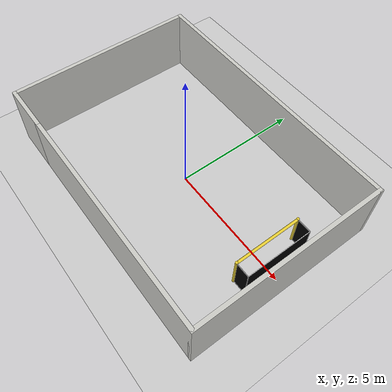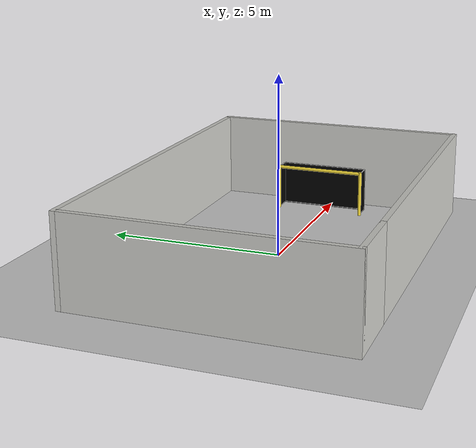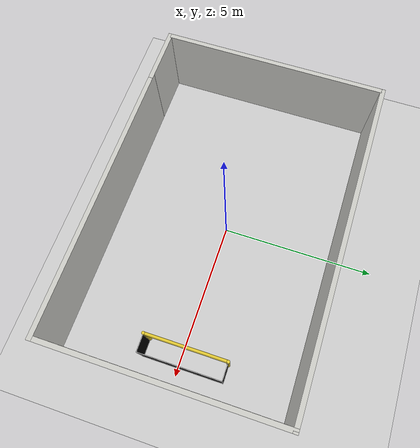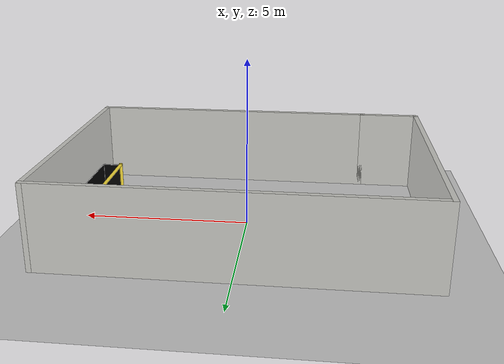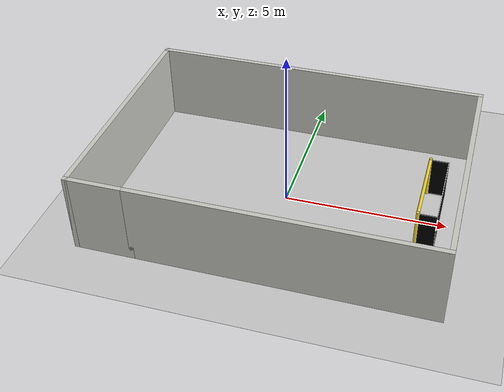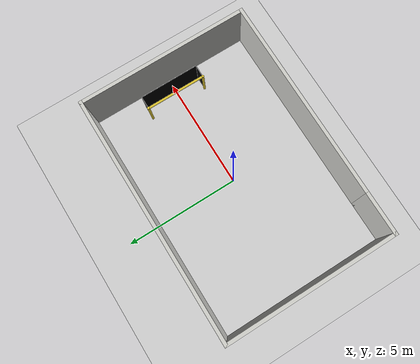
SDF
<sdf version="1.6">
 <world name="default">
  <model name="ground_plane">
   <static>1</static>
   <link name="link">
    <collision name="collision">
     <geometry><plane><normal>0 0 1</normal><size>100 100</size></plane></geometry>
     <surface><friction><ode><mu>100</mu><mu2>50</mu2></ode></friction></surface>
    </collision>
    <visual name="visual">
     <cast_shadows>0</cast_shadows>
     <geometry><plane><normal>0 0 1</normal><size>100 100</size></plane></geometry>
     <material>
      <script><uri>file://media/materials/scripts/gazebo.material</uri><name>Gazebo/Grey</name></script>
     </material>
    </visual>
   </link>
  </model>
  <model name="robocup_3d_goal">
   <link name="left_post">
    <pose>0 1.3 0.45 0 -0 0</pose>
    <inertial>
     <mass>1</mass>
     <inertia><ixx>1</ixx><ixy>0</ixy><ixz>0</ixz><iyy>1</iyy><iyz>0</iyz><izz>1</izz></inertia>
    </inertial>
    <visual name="visual">
     <geometry><cylinder><radius>0.05</radius><length>1.8</length></cylinder></geometry>
     <material>
      <script><uri>file://media/materials/scripts/gazebo.material</uri><name>Gazebo/ZincYellow</name></script>
      <ambient>1 1 1 1</ambient>
      <diffuse>1 1 1 1</diffuse>
      <specular>1 1 1 1</specular>
      <emissive>0 0 0 1</emissive>
      <shader type="vertex"><normal_map>__default__</normal_map></shader>
     </material>
    </visual>
    <collision name="collision">
     <geometry><cylinder><radius>0.05</radius><length>1.8</length></cylinder></geometry>
     <surface>
      <friction>
       <ode><mu>1</mu><mu2>1</mu2><fdir1>0 0 0</fdir1><slip1>0</slip1><slip2>0</slip2></ode>
       <torsional>
        <coefficient>1</coefficient>
        <patch_radius>0</patch_radius>
        <surface_radius>0</surface_radius>
        <use_patch_radius>1</use_patch_radius>
        <ode><slip>0</slip></ode>
       </torsional>
      </friction>
      <bounce><restitution_coefficient>0</restitution_coefficient><threshold>1e+06</threshold></bounce>
      <contact>
       <collide_without_contact>0</collide_without_contact>
       <collide_without_contact_bitmask>1</collide_without_contact_bitmask>
       <collide_bitmask>1</collide_bitmask>
       <ode>
        <soft_cfm>0</soft_cfm>
        <soft_erp>0.2</soft_erp>
        <kp>1e+13</kp>
        <kd>1</kd>
        <max_vel>0.01</max_vel>
        <min_depth>0</min_depth>
       </ode>
       <bullet>
        <split_impulse>1</split_impulse>
        <split_impulse_penetration_threshold>-0.01</split_impulse_penetration_threshold>
        <soft_cfm>0</soft_cfm>
        <soft_erp>0.2</soft_erp>
        <kp>1e+13</kp>
        <kd>1</kd>
       </bullet>
      </contact>
     </surface>
    </collision>
   </link>
   <link name="center_net">
    <pose>0.56 0 0.4 0 -0 0</pose>
    <inertial>
     <mass>1</mass>
     <inertia><ixx>1</ixx><ixy>0</ixy><ixz>0</ixz><iyy>1</iyy><iyz>0</iyz><izz>1</izz></inertia>
    </inertial>
    <visual name="visual">
     <geometry><box><size>0.01 2.6 1.8</size></box></geometry>
     <material>
      <script>
       <uri>model://robocup09_spl_field/materials/scripts/</uri>
       <uri>model://robocup09_spl_field/materials/textures/</uri>
       <name>RoboCup/Net</name>
      </script>
      <ambient>0 0 0 1</ambient>
      <diffuse>0 0 0 1</diffuse>
      <specular>0 0 0 1</specular>
      <emissive>0 0 0 1</emissive>
      <shader type="vertex"><normal_map>__default__</normal_map></shader>
     </material>
    </visual>
    <collision name="collision">
     <geometry><box><size>0.01 2.6 1.8</size></box></geometry>
     <surface>
      <friction>
       <ode><mu>1</mu><mu2>1</mu2><fdir1>0 0 0</fdir1><slip1>0</slip1><slip2>0</slip2></ode>
       <torsional>
        <coefficient>1</coefficient>
        <patch_radius>0</patch_radius>
        <surface_radius>0</surface_radius>
        <use_patch_radius>1</use_patch_radius>
        <ode><slip>0</slip></ode>
       </torsional>
      </friction>
      <bounce><restitution_coefficient>0</restitution_coefficient><threshold>1e+06</threshold></bounce>
      <contact>
       <collide_without_contact>0</collide_without_contact>
       <collide_without_contact_bitmask>1</collide_without_contact_bitmask>
       <collide_bitmask>1</collide_bitmask>
       <ode>
        <soft_cfm>0</soft_cfm>
        <soft_erp>0.2</soft_erp>
        <kp>1e+13</kp>
        <kd>1</kd>
        <max_vel>0.01</max_vel>
        <min_depth>0</min_depth>
       </ode>
       <bullet>
        <split_impulse>1</split_impulse>
        <split_impulse_penetration_threshold>-0.01</split_impulse_penetration_threshold>
        <soft_cfm>0</soft_cfm>
        <soft_erp>0.2</soft_erp>
        <kp>1e+13</kp>
        <kd>1</kd>
       </bullet>
      </contact>
     </surface>
    </collision>
   </link>
   <link name="center_support_horiz_lower">
    <pose>0.56 0 0.01 -3.14159 1.57079 -3.14159</pose>
    <inertial>
     <mass>1</mass>
     <inertia><ixx>1</ixx><ixy>0</ixy><ixz>0</ixz><iyy>1</iyy><iyz>0</iyz><izz>1</izz></inertia>
    </inertial>
    <visual name="visual">
     <geometry><box><size>0.02 2.6 0.02</size></box></geometry>
     <material>
      <script><uri>file://media/materials/scripts/gazebo.material</uri><name>Gazebo/White</name></script>
      <ambient>1 1 1 1</ambient>
      <diffuse>1 1 1 1</diffuse>
      <specular>0 0 0 1</specular>
      <emissive>0 0 0 1</emissive>
      <shader type="vertex"><normal_map>__default__</normal_map></shader>
     </material>
    </visual>
    <collision name="collision">
     <geometry><box><size>0.02 2.08 0.02</size></box></geometry>
     <surface>
      <friction>
       <ode><mu>1</mu><mu2>1</mu2><fdir1>0 0 0</fdir1><slip1>0</slip1><slip2>0</slip2></ode>
       <torsional>
        <coefficient>1</coefficient>
        <patch_radius>0</patch_radius>
        <surface_radius>0</surface_radius>
        <use_patch_radius>1</use_patch_radius>
        <ode><slip>0</slip></ode>
       </torsional>
      </friction>
      <bounce><restitution_coefficient>0</restitution_coefficient><threshold>1e+06</threshold></bounce>
      <contact>
       <collide_without_contact>0</collide_without_contact>
       <collide_without_contact_bitmask>1</collide_without_contact_bitmask>
       <collide_bitmask>1</collide_bitmask>
       <ode>
        <soft_cfm>0</soft_cfm>
        <soft_erp>0.2</soft_erp>
        <kp>1e+13</kp>
        <kd>1</kd>
        <max_vel>0.01</max_vel>
        <min_depth>0</min_depth>
       </ode>
       <bullet>
        <split_impulse>1</split_impulse>
        <split_impulse_penetration_threshold>-0.01</split_impulse_penetration_threshold>
        <soft_cfm>0</soft_cfm>
        <soft_erp>0.2</soft_erp>
        <kp>1e+13</kp>
        <kd>1</kd>
       </bullet>
      </contact>
     </surface>
    </collision>
   </link>
   <link name="center_support_horiz_upper">
    <pose>0.56 0 1.3 -3.14159 1.57079 -3.14159</pose>
    <inertial>
     <mass>1</mass>
     <inertia><ixx>1</ixx><ixy>0</ixy><ixz>0</ixz><iyy>1</iyy><iyz>0</iyz><izz>1</izz></inertia>
    </inertial>
    <visual name="visual">
     <geometry><box><size>0.02 2.6 0.02</size></box></geometry>
     <material>
      <script><uri>file://media/materials/scripts/gazebo.material</uri><name>Gazebo/White</name></script>
      <ambient>1 1 1 1</ambient>
      <diffuse>1 1 1 1</diffuse>
      <specular>0 0 0 1</specular>
      <emissive>0 0 0 1</emissive>
      <shader type="vertex"><normal_map>__default__</normal_map></shader>
     </material>
    </visual>
    <collision name="collision">
     <geometry><box><size>0.02 2.08 0.02</size></box></geometry>
     <surface>
      <friction>
       <ode><mu>1</mu><mu2>1</mu2><fdir1>0 0 0</fdir1><slip1>0</slip1><slip2>0</slip2></ode>
       <torsional>
        <coefficient>1</coefficient>
        <patch_radius>0</patch_radius>
        <surface_radius>0</surface_radius>
        <use_patch_radius>1</use_patch_radius>
        <ode><slip>0</slip></ode>
       </torsional>
      </friction>
      <bounce><restitution_coefficient>0</restitution_coefficient><threshold>1e+06</threshold></bounce>
      <contact>
       <collide_without_contact>0</collide_without_contact>
       <collide_without_contact_bitmask>1</collide_without_contact_bitmask>
       <collide_bitmask>1</collide_bitmask>
       <ode>
        <soft_cfm>0</soft_cfm>
        <soft_erp>0.2</soft_erp>
        <kp>1e+13</kp>
        <kd>1</kd>
        <max_vel>0.01</max_vel>
        <min_depth>0</min_depth>
       </ode>
       <bullet>
        <split_impulse>1</split_impulse>
        <split_impulse_penetration_threshold>-0.01</split_impulse_penetration_threshold>
        <soft_cfm>0</soft_cfm>
        <soft_erp>0.2</soft_erp>
        <kp>1e+13</kp>
        <kd>1</kd>
       </bullet>
      </contact>
     </surface>
    </collision>
   </link>
   <link name="crossbar">
    <pose>0 0 1.3 1.56994 1.57 -4.3e-05</pose>
    <inertial>
     <mass>1</mass>
     <inertia><ixx>1</ixx><ixy>0</ixy><ixz>0</ixz><iyy>1</iyy><iyz>0</iyz><izz>1</izz></inertia>
    </inertial>
    <visual name="visual">
     <geometry><cylinder><radius>0.05</radius><length>2.6</length></cylinder></geometry>
     <material>
      <script><uri>file://media/materials/scripts/gazebo.material</uri><name>Gazebo/ZincYellow</name></script>
      <ambient>1 1 1 1</ambient>
      <diffuse>1 1 1 1</diffuse>
      <specular>1 1 1 1</specular>
      <emissive>0 0 0 1</emissive>
      <shader type="vertex"><normal_map>__default__</normal_map></shader>
     </material>
    </visual>
    <collision name="collision">
     <geometry><cylinder><radius>0.05</radius><length>2.6</length></cylinder></geometry>
     <surface>
      <friction>
       <ode><mu>1</mu><mu2>1</mu2><fdir1>0 0 0</fdir1><slip1>0</slip1><slip2>0</slip2></ode>
       <torsional>
        <coefficient>1</coefficient>
        <patch_radius>0</patch_radius>
        <surface_radius>0</surface_radius>
        <use_patch_radius>1</use_patch_radius>
        <ode><slip>0</slip></ode>
       </torsional>
      </friction>
      <bounce><restitution_coefficient>0</restitution_coefficient><threshold>1e+06</threshold></bounce>
      <contact>
       <collide_without_contact>0</collide_without_contact>
       <collide_without_contact_bitmask>1</collide_without_contact_bitmask>
       <collide_bitmask>1</collide_bitmask>
       <ode>
        <soft_cfm>0</soft_cfm>
        <soft_erp>0.2</soft_erp>
        <kp>1e+13</kp>
        <kd>1</kd>
        <max_vel>0.01</max_vel>
        <min_depth>0</min_depth>
       </ode>
       <bullet>
        <split_impulse>1</split_impulse>
        <split_impulse_penetration_threshold>-0.01</split_impulse_penetration_threshold>
        <soft_cfm>0</soft_cfm>
        <soft_erp>0.2</soft_erp>
        <kp>1e+13</kp>
        <kd>1</kd>
       </bullet>
      </contact>
     </surface>
    </collision>
   </link>
   <link name="left_net">
    <pose>0.3 1.3 0.4 0 -0 0</pose>
    <inertial>
     <mass>1</mass>
     <inertia><ixx>1</ixx><ixy>0</ixy><ixz>0</ixz><iyy>1</iyy><iyz>0</iyz><izz>1</izz></inertia>
    </inertial>
    <visual name="visual">
     <geometry><box><size>0.5 0.01 1.8</size></box></geometry>
     <material>
      <script>
       <uri>model://robocup09_spl_field/materials/scripts/</uri>
       <uri>model://robocup09_spl_field/materials/textures/</uri>
       <name>RoboCup/Net</name>
      </script>
      <ambient>0 0 0 1</ambient>
      <diffuse>0 0 0 1</diffuse>
      <specular>0 0 0 1</specular>
      <emissive>0 0 0 1</emissive>
      <shader type="vertex"><normal_map>__default__</normal_map></shader>
     </material>
    </visual>
    <collision name="collision">
     <geometry><box><size>0.5 0.01 1.8</size></box></geometry>
     <surface>
      <friction>
       <ode><mu>1</mu><mu2>1</mu2><fdir1>0 0 0</fdir1><slip1>0</slip1><slip2>0</slip2></ode>
       <torsional>
        <coefficient>1</coefficient>
        <patch_radius>0</patch_radius>
        <surface_radius>0</surface_radius>
        <use_patch_radius>1</use_patch_radius>
        <ode><slip>0</slip></ode>
       </torsional>
      </friction>
      <bounce><restitution_coefficient>0</restitution_coefficient><threshold>1e+06</threshold></bounce>
      <contact>
       <collide_without_contact>0</collide_without_contact>
       <collide_without_contact_bitmask>1</collide_without_contact_bitmask>
       <collide_bitmask>1</collide_bitmask>
       <ode>
        <soft_cfm>0</soft_cfm>
        <soft_erp>0.2</soft_erp>
        <kp>1e+13</kp>
        <kd>1</kd>
        <max_vel>0.01</max_vel>
        <min_depth>0</min_depth>
       </ode>
       <bullet>
        <split_impulse>1</split_impulse>
        <split_impulse_penetration_threshold>-0.01</split_impulse_penetration_threshold>
        <soft_cfm>0</soft_cfm>
        <soft_erp>0.2</soft_erp>
        <kp>1e+13</kp>
        <kd>1</kd>
       </bullet>
      </contact>
     </surface>
    </collision>
   </link>
   <link name="left_support_horiz_lower">
    <pose>0.3 1.3 0 0 -0 0</pose>
    <inertial>
     <mass>1</mass>
     <inertia><ixx>1</ixx><ixy>0</ixy><ixz>0</ixz><iyy>1</iyy><iyz>0</iyz><izz>1</izz></inertia>
    </inertial>
    <visual name="visual">
     <geometry><box><size>0.5 0.02 0.02</size></box></geometry>
     <material>
      <script><uri>file://media/materials/scripts/gazebo.material</uri><name>Gazebo/White</name></script>
      <ambient>1 1 1 1</ambient>
      <diffuse>1 1 1 1</diffuse>
      <specular>0 0 0 1</specular>
      <emissive>0 0 0 1</emissive>
      <shader type="vertex"><normal_map>__default__</normal_map></shader>
     </material>
    </visual>
    <collision name="collision">
     <geometry><box><size>0.5 0.02 0.02</size></box></geometry>
     <surface>
      <friction>
       <ode><mu>1</mu><mu2>1</mu2><fdir1>0 0 0</fdir1><slip1>0</slip1><slip2>0</slip2></ode>
       <torsional>
        <coefficient>1</coefficient>
        <patch_radius>0</patch_radius>
        <surface_radius>0</surface_radius>
        <use_patch_radius>1</use_patch_radius>
        <ode><slip>0</slip></ode>
       </torsional>
      </friction>
      <bounce><restitution_coefficient>0</restitution_coefficient><threshold>1e+06</threshold></bounce>
      <contact>
       <collide_without_contact>0</collide_without_contact>
       <collide_without_contact_bitmask>1</collide_without_contact_bitmask>
       <collide_bitmask>1</collide_bitmask>
       <ode>
        <soft_cfm>0</soft_cfm>
        <soft_erp>0.2</soft_erp>
        <kp>1e+13</kp>
        <kd>1</kd>
        <max_vel>0.01</max_vel>
        <min_depth>0</min_depth>
       </ode>
       <bullet>
        <split_impulse>1</split_impulse>
        <split_impulse_penetration_threshold>-0.01</split_impulse_penetration_threshold>
        <soft_cfm>0</soft_cfm>
        <soft_erp>0.2</soft_erp>
        <kp>1e+13</kp>
        <kd>1</kd>
       </bullet>
      </contact>
     </surface>
    </collision>
   </link>
   <link name="left_support_horiz_upper">
    <pose>0.3 1.3 1.3 0 -0 0</pose>
    <inertial>
     <mass>1</mass>
     <inertia><ixx>1</ixx><ixy>0</ixy><ixz>0</ixz><iyy>1</iyy><iyz>0</iyz><izz>1</izz></inertia>
    </inertial>
    <visual name="visual">
     <geometry><box><size>0.5 0.02 0.02</size></box></geometry>
     <material>
      <script><uri>file://media/materials/scripts/gazebo.material</uri><name>Gazebo/White</name></script>
      <ambient>1 1 1 1</ambient>
      <diffuse>1 1 1 1</diffuse>
      <specular>0 0 0 1</specular>
      <emissive>0 0 0 1</emissive>
      <shader type="vertex"><normal_map>__default__</normal_map></shader>
     </material>
    </visual>
    <collision name="collision">
     <geometry><box><size>0.5 0.02 0.02</size></box></geometry>
     <surface>
      <friction>
       <ode><mu>1</mu><mu2>1</mu2><fdir1>0 0 0</fdir1><slip1>0</slip1><slip2>0</slip2></ode>
       <torsional>
        <coefficient>1</coefficient>
        <patch_radius>0</patch_radius>
        <surface_radius>0</surface_radius>
        <use_patch_radius>1</use_patch_radius>
        <ode><slip>0</slip></ode>
       </torsional>
      </friction>
      <bounce><restitution_coefficient>0</restitution_coefficient><threshold>1e+06</threshold></bounce>
      <contact>
       <collide_without_contact>0</collide_without_contact>
       <collide_without_contact_bitmask>1</collide_without_contact_bitmask>
       <collide_bitmask>1</collide_bitmask>
       <ode>
        <soft_cfm>0</soft_cfm>
        <soft_erp>0.2</soft_erp>
        <kp>1e+13</kp>
        <kd>1</kd>
        <max_vel>0.01</max_vel>
        <min_depth>0</min_depth>
       </ode>
       <bullet>
        <split_impulse>1</split_impulse>
        <split_impulse_penetration_threshold>-0.01</split_impulse_penetration_threshold>
        <soft_cfm>0</soft_cfm>
        <soft_erp>0.2</soft_erp>
        <kp>1e+13</kp>
        <kd>1</kd>
       </bullet>
      </contact>
     </surface>
    </collision>
   </link>
   <link name="left_support_vertical">
    <pose>0.56 1.3 0.4 -3.14159 1.57079 -3.14159</pose>
    <inertial>
     <mass>1</mass>
     <inertia><ixx>1</ixx><ixy>0</ixy><ixz>0</ixz><iyy>1</iyy><iyz>0</iyz><izz>1</izz></inertia>
    </inertial>
    <visual name="visual">
     <geometry><box><size>1.8 0.02 0.02</size></box></geometry>
     <material>
      <script><uri>file://media/materials/scripts/gazebo.material</uri><name>Gazebo/White</name></script>
      <ambient>1 1 1 1</ambient>
      <diffuse>1 1 1 1</diffuse>
      <specular>0 0 0 1</specular>
      <emissive>0 0 0 1</emissive>
      <shader type="vertex"><normal_map>__default__</normal_map></shader>
     </material>
    </visual>
    <collision name="collision">
     <geometry><box><size>0.8 0.02 0.02</size></box></geometry>
     <surface>
      <friction>
       <ode><mu>1</mu><mu2>1</mu2><fdir1>0 0 0</fdir1><slip1>0</slip1><slip2>0</slip2></ode>
       <torsional>
        <coefficient>1</coefficient>
        <patch_radius>0</patch_radius>
        <surface_radius>0</surface_radius>
        <use_patch_radius>1</use_patch_radius>
        <ode><slip>0</slip></ode>
       </torsional>
      </friction>
      <bounce><restitution_coefficient>0</restitution_coefficient><threshold>1e+06</threshold></bounce>
      <contact>
       <collide_without_contact>0</collide_without_contact>
       <collide_without_contact_bitmask>1</collide_without_contact_bitmask>
       <collide_bitmask>1</collide_bitmask>
       <ode>
        <soft_cfm>0</soft_cfm>
        <soft_erp>0.2</soft_erp>
        <kp>1e+13</kp>
        <kd>1</kd>
        <max_vel>0.01</max_vel>
        <min_depth>0</min_depth>
       </ode>
       <bullet>
        <split_impulse>1</split_impulse>
        <split_impulse_penetration_threshold>-0.01</split_impulse_penetration_threshold>
        <soft_cfm>0</soft_cfm>
        <soft_erp>0.2</soft_erp>
        <kp>1e+13</kp>
        <kd>1</kd>
       </bullet>
      </contact>
     </surface>
    </collision>
   </link>
   <link name="right_net">
    <pose>0.3 -1.3 0.4 0 -0 0</pose>
    <inertial>
     <mass>1</mass>
     <inertia><ixx>1</ixx><ixy>0</ixy><ixz>0</ixz><iyy>1</iyy><iyz>0</iyz><izz>1</izz></inertia>
    </inertial>
    <visual name="visual">
     <geometry><box><size>0.5 0.01 1.8</size></box></geometry>
     <material>
      <script>
       <uri>model://robocup09_spl_field/materials/scripts/</uri>
       <uri>model://robocup09_spl_field/materials/textures/</uri>
       <name>RoboCup/Net</name>
      </script>
      <ambient>0 0 0 1</ambient>
      <diffuse>0 0 0 1</diffuse>
      <specular>0 0 0 1</specular>
      <emissive>0 0 0 1</emissive>
      <shader type="vertex"><normal_map>__default__</normal_map></shader>
     </material>
    </visual>
    <collision name="collision">
     <geometry><box><size>0.5 0.01 1.8</size></box></geometry>
     <surface>
      <friction>
       <ode><mu>1</mu><mu2>1</mu2><fdir1>0 0 0</fdir1><slip1>0</slip1><slip2>0</slip2></ode>
       <torsional>
        <coefficient>1</coefficient>
        <patch_radius>0</patch_radius>
        <surface_radius>0</surface_radius>
        <use_patch_radius>1</use_patch_radius>
        <ode><slip>0</slip></ode>
       </torsional>
      </friction>
      <bounce><restitution_coefficient>0</restitution_coefficient><threshold>1e+06</threshold></bounce>
      <contact>
       <collide_without_contact>0</collide_without_contact>
       <collide_without_contact_bitmask>1</collide_without_contact_bitmask>
       <collide_bitmask>1</collide_bitmask>
       <ode>
        <soft_cfm>0</soft_cfm>
        <soft_erp>0.2</soft_erp>
        <kp>1e+13</kp>
        <kd>1</kd>
        <max_vel>0.01</max_vel>
        <min_depth>0</min_depth>
       </ode>
       <bullet>
        <split_impulse>1</split_impulse>
        <split_impulse_penetration_threshold>-0.01</split_impulse_penetration_threshold>
        <soft_cfm>0</soft_cfm>
        <soft_erp>0.2</soft_erp>
        <kp>1e+13</kp>
        <kd>1</kd>
       </bullet>
      </contact>
     </surface>
    </collision>
   </link>
   <link name="right_post">
    <pose>0 -1.3 0.45 0 -0 0</pose>
    <inertial>
     <mass>1</mass>
     <inertia><ixx>1</ixx><ixy>0</ixy><ixz>0</ixz><iyy>1</iyy><iyz>0</iyz><izz>1</izz></inertia>
    </inertial>
    <visual name="visual">
     <geometry><cylinder><radius>0.05</radius><length>1.8</length></cylinder></geometry>
     <material>
      <script><uri>file://media/materials/scripts/gazebo.material</uri><name>Gazebo/ZincYellow</name></script>
      <ambient>1 1 1 1</ambient>
      <diffuse>1 1 1 1</diffuse>
      <specular>1 1 1 1</specular>
      <emissive>0 0 0 1</emissive>
      <shader type="vertex"><normal_map>__default__</normal_map></shader>
     </material>
    </visual>
    <collision name="collision">
     <geometry><cylinder><radius>0.05</radius><length>1.8</length></cylinder></geometry>
     <surface>
      <friction>
       <ode><mu>1</mu><mu2>1</mu2><fdir1>0 0 0</fdir1><slip1>0</slip1><slip2>0</slip2></ode>
       <torsional>
        <coefficient>1</coefficient>
        <patch_radius>0</patch_radius>
        <surface_radius>0</surface_radius>
        <use_patch_radius>1</use_patch_radius>
        <ode><slip>0</slip></ode>
       </torsional>
      </friction>
      <bounce><restitution_coefficient>0</restitution_coefficient><threshold>1e+06</threshold></bounce>
      <contact>
       <collide_without_contact>0</collide_without_contact>
       <collide_without_contact_bitmask>1</collide_without_contact_bitmask>
       <collide_bitmask>1</collide_bitmask>
       <ode>
        <soft_cfm>0</soft_cfm>
        <soft_erp>0.2</soft_erp>
        <kp>1e+13</kp>
        <kd>1</kd>
        <max_vel>0.01</max_vel>
        <min_depth>0</min_depth>
       </ode>
       <bullet>
        <split_impulse>1</split_impulse>
        <split_impulse_penetration_threshold>-0.01</split_impulse_penetration_threshold>
        <soft_cfm>0</soft_cfm>
        <soft_erp>0.2</soft_erp>
        <kp>1e+13</kp>
        <kd>1</kd>
       </bullet>
      </contact>
     </surface>
    </collision>
   </link>
   <link name="right_support_horiz_lower">
    <pose>0.3 -1.3 0.01 0 -0 0</pose>
    <inertial>
     <mass>1</mass>
     <inertia><ixx>1</ixx><ixy>0</ixy><ixz>0</ixz><iyy>1</iyy><iyz>0</iyz><izz>1</izz></inertia>
    </inertial>
    <visual name="visual">
     <geometry><box><size>0.5 0.02 0.02</size></box></geometry>
     <material>
      <script><uri>file://media/materials/scripts/gazebo.material</uri><name>Gazebo/White</name></script>
      <ambient>1 1 1 1</ambient>
      <diffuse>1 1 1 1</diffuse>
      <specular>0 0 0 1</specular>
      <emissive>0 0 0 1</emissive>
      <shader type="vertex"><normal_map>__default__</normal_map></shader>
     </material>
    </visual>
    <collision name="collision">
     <geometry><box><size>0.5 0.02 0.02</size></box></geometry>
     <surface>
      <friction>
       <ode><mu>1</mu><mu2>1</mu2><fdir1>0 0 0</fdir1><slip1>0</slip1><slip2>0</slip2></ode>
       <torsional>
        <coefficient>1</coefficient>
        <patch_radius>0</patch_radius>
        <surface_radius>0</surface_radius>
        <use_patch_radius>1</use_patch_radius>
        <ode><slip>0</slip></ode>
       </torsional>
      </friction>
      <bounce><restitution_coefficient>0</restitution_coefficient><threshold>1e+06</threshold></bounce>
      <contact>
       <collide_without_contact>0</collide_without_contact>
       <collide_without_contact_bitmask>1</collide_without_contact_bitmask>
       <collide_bitmask>1</collide_bitmask>
       <ode>
        <soft_cfm>0</soft_cfm>
        <soft_erp>0.2</soft_erp>
        <kp>1e+13</kp>
        <kd>1</kd>
        <max_vel>0.01</max_vel>
        <min_depth>0</min_depth>
       </ode>
       <bullet>
        <split_impulse>1</split_impulse>
        <split_impulse_penetration_threshold>-0.01</split_impulse_penetration_threshold>
        <soft_cfm>0</soft_cfm>
        <soft_erp>0.2</soft_erp>
        <kp>1e+13</kp>
        <kd>1</kd>
       </bullet>
      </contact>
     </surface>
    </collision>
   </link>
   <link name="right_support_horiz_upper">
    <pose>0.3 -1.3 1.3 0 -0 0</pose>
    <inertial>
     <mass>1</mass>
     <inertia><ixx>1</ixx><ixy>0</ixy><ixz>0</ixz><iyy>1</iyy><iyz>0</iyz><izz>1</izz></inertia>
    </inertial>
    <visual name="visual">
     <geometry><box><size>0.5 0.02 0.02</size></box></geometry>
     <material>
      <script><uri>file://media/materials/scripts/gazebo.material</uri><name>Gazebo/White</name></script>
      <ambient>1 1 1 1</ambient>
      <diffuse>1 1 1 1</diffuse>
      <specular>0 0 0 1</specular>
      <emissive>0 0 0 1</emissive>
      <shader type="vertex"><normal_map>__default__</normal_map></shader>
     </material>
    </visual>
    <collision name="collision">
     <geometry><box><size>0.5 0.02 0.02</size></box></geometry>
     <surface>
      <friction>
       <ode><mu>1</mu><mu2>1</mu2><fdir1>0 0 0</fdir1><slip1>0</slip1><slip2>0</slip2></ode>
       <torsional>
        <coefficient>1</coefficient>
        <patch_radius>0</patch_radius>
        <surface_radius>0</surface_radius>
        <use_patch_radius>1</use_patch_radius>
        <ode><slip>0</slip></ode>
       </torsional>
      </friction>
      <bounce><restitution_coefficient>0</restitution_coefficient><threshold>1e+06</threshold></bounce>
      <contact>
       <collide_without_contact>0</collide_without_contact>
       <collide_without_contact_bitmask>1</collide_without_contact_bitmask>
       <collide_bitmask>1</collide_bitmask>
       <ode>
        <soft_cfm>0</soft_cfm>
        <soft_erp>0.2</soft_erp>
        <kp>1e+13</kp>
        <kd>1</kd>
        <max_vel>0.01</max_vel>
        <min_depth>0</min_depth>
       </ode>
       <bullet>
        <split_impulse>1</split_impulse>
        <split_impulse_penetration_threshold>-0.01</split_impulse_penetration_threshold>
        <soft_cfm>0</soft_cfm>
        <soft_erp>0.2</soft_erp>
        <kp>1e+13</kp>
        <kd>1</kd>
       </bullet>
      </contact>
     </surface>
    </collision>
   </link>
   <link name="right_support_vertical">
    <pose>0.56 -1.3 0.4 -3.14159 1.57079 -3.14159</pose>
    <inertial>
     <mass>1</mass>
     <inertia><ixx>1</ixx><ixy>0</ixy><ixz>0</ixz><iyy>1</iyy><iyz>0</iyz><izz>1</izz></inertia>
    </inertial>
    <visual name="visual">
     <geometry><box><size>1.8 0.02 0.02</size></box></geometry>
     <material>
      <script><uri>file://media/materials/scripts/gazebo.material</uri><name>Gazebo/White</name></script>
      <ambient>1 1 1 1</ambient>
      <diffuse>1 1 1 1</diffuse>
      <specular>0 0 0 1</specular>
      <emissive>0 0 0 1</emissive>
      <shader type="vertex"><normal_map>__default__</normal_map></shader>
     </material>
    </visual>
    <collision name="collision">
     <geometry><box><size>0.8 0.02 0.02</size></box></geometry>
     <surface>
      <friction>
       <ode><mu>1</mu><mu2>1</mu2><fdir1>0 0 0</fdir1><slip1>0</slip1><slip2>0</slip2></ode>
       <torsional>
        <coefficient>1</coefficient>
        <patch_radius>0</patch_radius>
        <surface_radius>0</surface_radius>
        <use_patch_radius>1</use_patch_radius>
        <ode><slip>0</slip></ode>
       </torsional>
      </friction>
      <bounce><restitution_coefficient>0</restitution_coefficient><threshold>1e+06</threshold></bounce>
      <contact>
       <collide_without_contact>0</collide_without_contact>
       <collide_without_contact_bitmask>1</collide_without_contact_bitmask>
       <collide_bitmask>1</collide_bitmask>
       <ode>
        <soft_cfm>0</soft_cfm>
        <soft_erp>0.2</soft_erp>
        <kp>1e+13</kp>
        <kd>1</kd>
        <max_vel>0.01</max_vel>
        <min_depth>0</min_depth>
       </ode>
       <bullet>
        <split_impulse>1</split_impulse>
        <split_impulse_penetration_threshold>-0.01</split_impulse_penetration_threshold>
        <soft_cfm>0</soft_cfm>
        <soft_erp>0.2</soft_erp>
        <kp>1e+13</kp>
        <kd>1</kd>
       </bullet>
      </contact>
     </surface>
    </collision>
   </link>
   <static>1</static>
   <pose>4.1861 0.162553 0 0 -0 0</pose>
  </model>
  <model name="horizon_limiter_0">
   <pose>0.028551 -0.048815 0 0 -0 0</pose>
   <link name="Wall_10">
    <collision name="Wall_10_Collision">
     <geometry><box><size>10.75 0.15 2.5</size></box></geometry>
     <pose>0 0 1.25 0 -0 0</pose>
    </collision>
    <visual name="Wall_10_Visual">
     <pose>0 0 1.25 0 -0 0</pose>
     <geometry><box><size>10.75 0.15 2.5</size></box></geometry>
     <material>
      <script><uri>file://media/materials/scripts/gazebo.material</uri><name>Gazebo/CeilingTiled</name></script>
      <ambient>0.921569 0.807843 0.615686 1</ambient>
     </material>
    </visual>
    <pose>0 3.675 0 0 -0 3.14159</pose>
   </link>
   <link name="Wall_11">
    <collision name="Wall_11_Collision">
     <geometry><box><size>7.5 0.15 2.5</size></box></geometry>
     <pose>0 0 1.25 0 -0 0</pose>
    </collision>
    <visual name="Wall_11_Visual">
     <pose>0 0 1.25 0 -0 0</pose>
     <geometry><box><size>7.5 0.15 2.5</size></box></geometry>
     <material>
      <script><uri>file://media/materials/scripts/gazebo.material</uri><name>Gazebo/CeilingTiled</name></script>
      <ambient>0.921569 0.807843 0.615686 1</ambient>
     </material>
    </visual>
    <pose>-5.3 0 0 0 0 -1.5708</pose>
   </link>
   <link name="Wall_12">
    <collision name="Wall_12_Collision">
     <geometry><box><size>1.9 0.15 2.5</size></box></geometry>
     <pose>0 0 1.25 0 -0 0</pose>
    </collision>
    <visual name="Wall_12_Visual">
     <pose>0 0 1.25 0 -0 0</pose>
     <geometry><box><size>1.9 0.15 2.5</size></box></geometry>
     <material>
      <script><uri>file://media/materials/scripts/gazebo.material</uri><name>Gazebo/CeilingTiled</name></script>
      <ambient>0.921569 0.807843 0.615686 1</ambient>
     </material>
    </visual>
    <pose>-4.425 -3.675 0 0 -0 0</pose>
   </link>
   <link name="Wall_6">
    <collision name="Wall_6_Collision">
     <geometry><box><size>9 0.15 2.5</size></box></geometry>
     <pose>0 0 1.25 0 -0 0</pose>
    </collision>
    <visual name="Wall_6_Visual">
     <pose>0 0 1.25 0 -0 0</pose>
     <geometry><box><size>9 0.15 2.5</size></box></geometry>
     <material>
      <script><uri>file://media/materials/scripts/gazebo.material</uri><name>Gazebo/CeilingTiled</name></script>
      <ambient>0.921569 0.807843 0.615686 1</ambient>
     </material>
    </visual>
    <pose>0.875 -3.675 0 0 -0 0</pose>
   </link>
   <link name="Wall_8">
    <collision name="Wall_8_Collision">
     <geometry><box><size>7.5 0.15 2.5</size></box></geometry>
     <pose>0 0 1.25 0 -0 0</pose>
    </collision>
    <visual name="Wall_8_Visual">
     <pose>0 0 1.25 0 -0 0</pose>
     <geometry><box><size>7.5 0.15 2.5</size></box></geometry>
     <material>
      <script><uri>file://media/materials/scripts/gazebo.material</uri><name>Gazebo/CeilingTiled</name></script>
      <ambient>0.921569 0.807843 0.615686 1</ambient>
     </material>
    </visual>
    <pose>5.3 0 0 0 -0 1.5708</pose>
   </link>
   <static>1</static>
  </model>
 </world>
</sdf>
